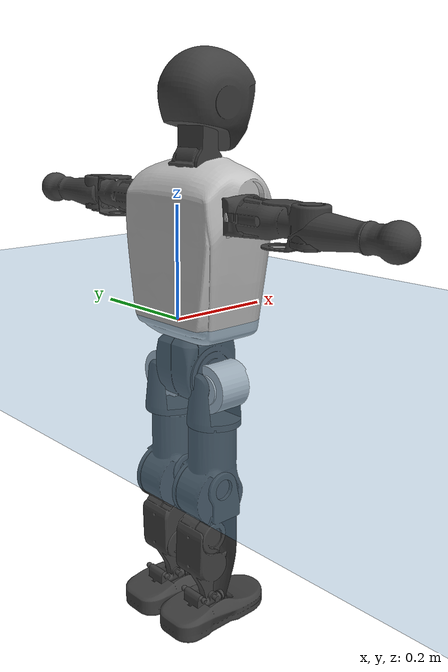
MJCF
<mujoco model="T1">
  <compiler angle="radian" assetdir="assets" balanceinertia="true" inertiafromgeom="false"/>

  <option timestep="0.005" density="1.2" viscosity="2e-05"/>

  <size nkey="1"/>

  <visual>
    <quality shadowsize="8192"/>
    <map shadowclip="0.5"/>
  </visual>

  <default>
    <default class="/">
      <joint armature="0.01" damping="0.01" frictionloss="0.1"/>
      <geom contype="0" conaffinity="0" group="1" solref="-1000 -80"/>
      <site size="0.01 0.005 0.005" group="5"/>
      <general forcelimited="true" biastype="affine" gainprm="25" biasprm="0 -25 -0.6"/>
      <default class="t1">
        <geom rgba="0.25 0.25 0.25 1"/>
        <default class="visual">
          <geom type="mesh" group="2"/>
        </default>
        <default class="collision">
          <geom group="3"/>
        </default>
        <default class="foot">
          <geom size="0.1115 0.05 0.015" type="box" condim="6" group="4" priority="1" solimp="0.015 1 0.015"/>
        </default>
        <default class="reward_collision_sphere">
          <geom group="5" rgba="1 0 0 1"/>
        </default>
      </default>
    </default>
  </default>

  <asset>
    <texture type="skybox" colorspace="auto" name="//unnamed_texture_0" builtin="gradient" rgb1="0.95 0.95 0.95" rgb2="0.95 0.95 0.95" width="100" height="600"/>
    <texture type="2d" colorspace="auto" name="texplane" builtin="checker" rgb1="0.345 0.575 0.748" rgb2="0.345 0.575 0.748" markrgb="1 1 1" width="512" height="512"/>
    <material name="MatPlane" class="/" texture="texplane" texuniform="true" texrepeat="2 2" specular="0.9"/>
    <mesh name="Trunk" class="/" file="Trunk.stl"/>
    <mesh name="H1" class="/" file="H1.stl"/>
    <mesh name="H2" class="/" file="H2.stl"/>
    <mesh name="AL1" class="/" file="AL1.stl"/>
    <mesh name="AL2" class="/" file="AL2.stl"/>
    <mesh name="AL3" class="/" file="AL3.stl"/>
    <mesh name="left_hand_link" class="/" file="left_hand_link.stl"/>
    <mesh name="AR1" class="/" file="AR1.stl"/>
    <mesh name="AR2" class="/" file="AR2.stl"/>
    <mesh name="AR3" class="/" file="AR3.stl"/>
    <mesh name="right_hand_link" class="/" file="right_hand_link.stl"/>
    <mesh name="Waist" class="/" file="Waist.stl"/>
    <mesh name="Hip_Pitch_Left" class="/" file="Hip_Pitch_Left.stl"/>
    <mesh name="Hip_Roll_Left" class="/" file="Hip_Roll_Left.stl"/>
    <mesh name="Hip_Yaw_Left" class="/" file="Hip_Yaw_Left.stl"/>
    <mesh name="Shank_Left" class="/" file="Shank_Left.stl"/>
    <mesh name="Ankle_Cross_Left" class="/" file="Ankle_Cross_Left.stl"/>
    <mesh name="left_foot_link" class="/" file="left_foot_link.stl"/>
    <mesh name="Hip_Pitch_Right" class="/" file="Hip_Pitch_Right.stl"/>
    <mesh name="Hip_Roll_Right" class="/" file="Hip_Roll_Right.stl"/>
    <mesh name="Hip_Yaw_Right" class="/" file="Hip_Yaw_Right.stl"/>
    <mesh name="Shank_Right" class="/" file="Shank_Right.stl"/>
    <mesh name="Ankle_Cross_Right" class="/" file="Ankle_Cross_Right.stl"/>
    <mesh name="right_foot_link" class="/" file="right_foot_link.stl"/>
  </asset>

  <worldbody>
    <geom name="floor" class="/" size="100 100 0.125" type="plane" group="0" material="MatPlane"/>
    <light name="toplight_shadow" class="/" pos="0 0 5" dir="0.0990148 0.0990148 -0.990148" type="directional" ambient="0.04 0.04 0.04" diffuse="0.55 0.55 0.55" specular="0.12 0.12 0.12"/>
    <light name="toplight_fill" class="/" pos="0 0 5" dir="0.0990148 0.0990148 -0.990148" type="directional" castshadow="false" ambient="0.04 0.04 0.04" diffuse="0.3 0.3 0.3" specular="0.08 0.08 0.08"/>
    <body name="trunk" childclass="t1" pos="-0.00170927 0.000786916 -0.000948038" quat="0.999995 0.000251858 0.00283856 -0.00104568">
      <inertial pos="0.0419785 0.00393503 0.0905853" quat="0.999998 -3.90581e-05 0.00058632 -0.00187649" mass="4.61012" diaginertia="0.015368 0.00596306 0.0288226"/>
      <joint name="//unnamed_joint_0" type="free" armature="0" damping="0" frictionloss="0"/>
      <geom name="//unnamed_geom_1" class="visual" rgba="0.76 0.76 0.76 1" mesh="Trunk"/>
      <geom name="//unnamed_geom_2" class="collision" size="0.0538383 0.0717844 0.107677" pos="0.0420118 0 0.102914" type="box"/>
      <geom name="//unnamed_geom_3" class="reward_collision_sphere" size="0.0825521" pos="0.0420118 0 0.0857618"/>
      <geom name="//unnamed_geom_4" class="reward_collision_sphere" size="0.0107677" pos="0.0420118 0.0506361 0"/>
      <geom name="//unnamed_geom_5" class="reward_collision_sphere" size="0.0107677" pos="0.0420118 -0.0506361 0"/>
      <geom name="//unnamed_geom_6" class="reward_collision_sphere" size="0.0107677" pos="0.0420118 0.0637419 0.154371"/>
      <geom name="//unnamed_geom_7" class="reward_collision_sphere" size="0.0107677" pos="0.0420118 -0.0637419 0.154371"/>
      <site name="imu" pos="-0.0138398 0.00920675 0.0139759" size="0.00717844"/>
      <camera name="track" pos="0 -1.19144 0" quat="0.707107 0.707107 0 0" mode="trackcom"/>
      <camera name="ego_camera" pos="0.0854239 0 0.360199" quat="-0.5 -0.5 0.5 0.5"/>
      <body name="H1" pos="0.0424148 -0.00073448 0.210311" quat="1 2.22005e-05 2.76107e-05 3.64437e-05">
        <inertial pos="0.000512489 -0.00781465 0.0488468" quat="0.748143 -0.0294675 0.00735596 0.662842" mass="0.173428" diaginertia="4.31614e-05 1.85842e-05 7.88248e-05"/>
        <joint name="AAHead_yaw" pos="0 0 0" axis="0.0289769 0.00663904 0.999558" range="-1.59578 1.53067" armature="0.00789065" damping="0.0114364" frictionloss="0.0733748"/>
        <geom name="//unnamed_geom_8" class="visual" mesh="H1"/>
        <body name="H2" pos="-0.00338008 -0.0062576 0.0561026" quat="0.999999 0.000631203 0.0010018 -1.45219e-05">
          <inertial pos="0.000178938 -0.0048605 0.0851381" quat="0.987154 0.110212 -0.0846215 -0.0788606" mass="0.225884" diaginertia="0.000313163 0.000142853 0.000771887"/>
          <joint name="Head_pitch" pos="0 0 0" axis="-0.000463788 -1 0.000532595" range="-1.24269 0.354015" armature="0.00946148" damping="0.00442578" frictionloss="0.0429753"/>
          <geom name="//unnamed_geom_9" class="visual" mesh="H2"/>
          <geom name="//unnamed_geom_10" class="collision" size="0.0574275" pos="0.00700196 0 0.094338"/>
          <geom name="//unnamed_geom_11" class="reward_collision_sphere" size="0.064606" pos="0.0140039 0 0.0857618"/>
        </body>
      </body>
      <body name="AL1" pos="0.0415058 0.0687909 0.19443" quat="1 -0.000465937 0.000355303 -0.000182719">
        <inertial pos="0.00573111 0.0290136 -0.00273781" quat="0.50685 0.501422 -0.495201 0.496442" mass="0.18917" diaginertia="0.000224917 9.51507e-05 0.000137794"/>
        <joint name="Left_Shoulder_Pitch" pos="0 0 0" axis="-0.0133744 0.99948 -0.0293311" stiffness="0.00710051" range="-3.28723 1.23843" armature="0.00645204" damping="0.00742415" frictionloss="0.0724283"/>
        <geom name="//unnamed_geom_12" class="visual" rgba="0.76 0.76 0.76 1" mesh="AL1"/>
        <body name="AL2" pos="0.00441862 0.0330414 0.0027844" quat="1 -0.000183977 0.000176339 0.000127379">
          <inertial pos="0.00177996 0.0236003 0.00461208" quat="0.485964 0.505299 -0.503715 0.504761" mass="0.0624366" diaginertia="6.75779e-05 2.58784e-05 8.32913e-05"/>
          <joint name="Left_Shoulder_Roll" pos="0 0 0" axis="-0.999998 0.00198303 -0.000989114" range="-1.59811 1.78681" armature="0.00695379" damping="0.00431801" frictionloss="0.0712523"/>
          <geom name="//unnamed_geom_13" class="visual" mesh="AL2"/>
          <body name="AL3" pos="-0.000774357 0.037412 0.000140661" quat="1 -2.85715e-05 -0.000448312 0.000746779">
            <inertial pos="0.00140689 0.0501767 0.00142041" quat="0.704379 0.709058 0.00192444 -0.0329114" mass="0.369187" diaginertia="0.00209145 0.00092615 0.000308313"/>
            <joint name="Left_Elbow_Pitch" pos="0 0 0" axis="-0.00578117 -0.999971 -0.0048648" stiffness="0.00153397" range="-2.29393 2.22196" armature="0.00719812" damping="0" frictionloss="0.0468797"/>
            <geom name="//unnamed_geom_14" class="visual" mesh="AL3"/>
            <geom name="//unnamed_geom_15" class="collision" size="0.0215353 0.0538383" pos="0 0.029786 0" quat="0.707105 0.707108 0 0" type="cylinder"/>
            <geom name="//unnamed_geom_16" class="reward_collision_sphere" size="0.0258424"/>
            <body name="left_hand_link" pos="-0.00506453 0.0854331 -0.00220705" quat="0.999999 0.000192029 -0.000270146 -0.000977214">
              <inertial pos="-0.00528361 0.0680612 0.00525909" quat="0.708896 0.705297 -0.0025583 -0.00408757" mass="0.121304" diaginertia="0.00138986 0.000580934 9.5347e-05"/>
              <joint name="Left_Elbow_Yaw" pos="0 0 0" axis="-0.00344974 0.00857232 0.999957" range="-2.42834 -0.0364567" armature="0.0063387" damping="0.00565273" frictionloss="0.0710956"/>
              <geom name="//unnamed_geom_17" class="visual" mesh="left_hand_link"/>
              <geom name="//unnamed_geom_18" class="collision" size="0.0215353 0.0628114" pos="0 0.0774435 0" quat="0.707105 0.707108 0 0" type="cylinder"/>
              <geom name="//unnamed_geom_19" class="reward_collision_sphere" size="0.0358922"/>
              <geom name="//unnamed_geom_20" class="reward_collision_sphere" size="0.0251245" pos="0 0.0655291 0"/>
              <geom name="//unnamed_geom_21" class="reward_collision_sphere" size="0.0251245" pos="0 0.12808 0"/>
            </body>
          </body>
        </body>
      </body>
      <body name="AR1" pos="0.0353314 -0.0590293 0.186665" quat="0.999993 0.00137477 -0.00310322 0.00126165">
        <inertial pos="-0.000410718 -0.0271508 -2.08463e-05" quat="0.505708 0.49411 -0.506875 0.493145" mass="0.178647" diaginertia="0.00022068 8.69245e-05 0.00012687"/>
        <joint name="Right_Shoulder_Pitch" pos="0 0 0" axis="-0.0102787 -0.999946 -0.00161883" range="-1.26469 3.30227" armature="0.00687703" damping="0" frictionloss="0.0723975"/>
        <geom name="//unnamed_geom_22" class="visual" rgba="0.76 0.76 0.76 1" mesh="AR1"/>
        <body name="AR2" pos="-0.00189636 -0.0239035 0.0063561" quat="0.999998 -0.00199085 -0.000224303 0.000651727">
          <inertial pos="0.00219553 -0.0222608 -6.01268e-05" quat="0.503965 0.496363 -0.517156 0.481864" mass="0.0616472" diaginertia="6.96589e-05 2.64578e-05 8.47969e-05"/>
          <joint name="Right_Shoulder_Roll" pos="0 0 0" axis="-0.99972 -0.0234323 -0.00314913" stiffness="0.00889978" range="-1.72995 1.58354" armature="0.00715755" damping="0.0252198" frictionloss="0.0636681"/>
          <geom name="//unnamed_geom_23" class="visual" mesh="AR2"/>
          <body name="AR3" pos="0.00139081 -0.0353222 -0.00144218" quat="0.999997 0.00183743 -0.00159423 -0.000762954">
            <inertial pos="-0.0080528 -0.0488793 0.00052518" quat="0.705449 0.708692 0.00480549 -0.00867111" mass="0.370074" diaginertia="0.00199662 0.000867219 0.000265299"/>
            <joint name="Right_Elbow_Pitch" pos="0 0 0" axis="0.00267005 0.99998 -0.00570902" range="-2.27825 2.43742" armature="0.00723969" damping="0.00230593" frictionloss="0.069342"/>
            <geom name="//unnamed_geom_24" class="visual" mesh="AR3"/>
            <geom name="//unnamed_geom_25" class="collision" size="0.0215353 0.0538383" pos="0 -0.029786 0" quat="0.707105 0.707108 0 0" type="cylinder"/>
            <geom name="//unnamed_geom_26" class="reward_collision_sphere" size="0.0258424"/>
            <body name="right_hand_link" pos="0.000159996 -0.0852371 -0.00550327" quat="0.999998 -0.00117413 0.000201143 0.00181485">
              <inertial pos="-0.00706131 -0.0643308 0.00601637" quat="0.706361 0.707852 0.000215219 6.04124e-05" mass="0.134707" diaginertia="0.00165798 0.000686693 0.000100818"/>
              <joint name="Right_Elbow_Yaw" pos="0 0 0" axis="0.0114039 0.000580933 0.999935" range="0.0180029 2.54262" armature="0.0069895" damping="0.0133851" frictionloss="0.0694499"/>
              <geom name="//unnamed_geom_27" class="visual" mesh="right_hand_link"/>
              <geom name="//unnamed_geom_28" class="collision" size="0.0215353 0.0628114" pos="0 -0.0774435 0" quat="0.707105 0.707108 0 0" type="cylinder"/>
              <geom name="//unnamed_geom_29" class="reward_collision_sphere" size="0.0358922"/>
              <geom name="//unnamed_geom_30" class="reward_collision_sphere" size="0.0251245" pos="0 -0.0655291 0"/>
              <geom name="//unnamed_geom_31" class="reward_collision_sphere" size="0.0251245" pos="0 -0.12808 0"/>
            </body>
          </body>
        </body>
      </body>
      <body name="Waist" pos="0.0495478 0.00514862 -0.0998087" quat="1 0.000136043 0.000548385 0.000552664">
        <inertial pos="0.00453512 -0.00399267 0.00424805" quat="0.982496 0.0103572 -0.185489 0.013715" mass="1.03193" diaginertia="0.000910402 0.000413751 0.00235463"/>
        <joint name="Waist" pos="0 0 0" axis="-0.0010561 0.003443 0.999994" range="-1.5638 1.56678" armature="0.00798306" damping="0.0380032" frictionloss="0.0661319"/>
        <geom name="//unnamed_geom_32" class="visual" mesh="Waist"/>
        <body name="Hip_Pitch_Left" pos="-0.00128517 0.0614558 0.000808834" quat="1 -0.000351242 -0.000135635 -0.000131068">
          <inertial pos="0.000901851 -0.00286419 -0.0100732" quat="0.974993 0.221505 0.0180195 0.000113589" mass="0.39033" diaginertia="0.000305077 0.000110593 0.000585714"/>
          <joint name="Left_Hip_Pitch" pos="0 0 0" axis="-0.000829531 1 -0.000356692" range="-1.75924 1.47087" armature="0.00666692" damping="0.0217007" frictionloss="0.0755992"/>
          <geom name="//unnamed_geom_33" class="visual" rgba="0.76 0.76 0.76 1" mesh="Hip_Pitch_Left"/>
          <body name="Hip_Roll_Left" pos="-0.00578015 -0.00434449 -0.0149148" quat="0.999999 -0.000629933 0.00020169 -0.00101524">
            <inertial pos="-0.000812799 -0.000647459 -0.0415798" quat="0.700342 -0.00154234 -0.0103072 0.713731" mass="0.133995" diaginertia="0.000260501 0.000113316 0.000240877"/>
            <joint name="Left_Hip_Roll" pos="0 0 0" axis="-1 -5.51143e-06 -2.55234e-05" stiffness="0.0263524" range="-1.56993 0.0793288" armature="0.00813458" damping="0.0128637" frictionloss="0.0799647"/>
            <geom name="//unnamed_geom_34" class="visual" mesh="Hip_Roll_Left"/>
            <geom name="//unnamed_geom_35" class="reward_collision_sphere" size="0.0394814"/>
            <body name="Hip_Yaw_Left" pos="0.000706642 -0.00689087 -0.0788587" quat="1 0.000244631 -0.000207184 -0.000201247">
              <inertial pos="-0.00377748 -0.00132103 -0.075843" quat="0.700931 -0.0205418 -0.0508569 0.711117" mass="0.832537" diaginertia="0.00434161 0.00204009 0.00118046"/>
              <joint name="Left_Hip_Yaw" pos="0 0 0" axis="0.0015318 -0.00197054 -0.999997" range="-1.06521 0.844018" armature="0.00653695" damping="0.0487592" frictionloss="0.0709754"/>
              <geom name="//unnamed_geom_36" class="visual" mesh="Hip_Yaw_Left"/>
              <geom name="//unnamed_geom_37" class="collision" size="0.0358922 0.0574275" type="cylinder"/>
              <body name="Shank_Left" pos="-0.00735976 -0.00333452 -0.109385" quat="1 0.000346069 -4.94937e-05 3.60706e-05">
                <inertial pos="-0.00275106 0.000434274 -0.102097" quat="0.998163 -0.00207323 -0.0224229 0.0562417" mass="0.613037" diaginertia="0.00564908 0.00264429 0.000909491"/>
                <joint name="Left_Knee_Pitch" pos="0 0 0" axis="0.00238513 0.999952 -0.00948359" range="-0.0290079 2.32058" armature="0.00737623" damping="0" frictionloss="0.0672513"/>
                <geom name="//unnamed_geom_38" class="visual" mesh="Shank_Left"/>
                <geom name="//unnamed_geom_39" class="collision" size="0.0358922 0.0538383" pos="0 0 -0.102914" type="cylinder"/>
                <geom name="//unnamed_geom_40" class="reward_collision_sphere" size="0.0466599"/>
                <body name="Ankle_Cross_Left" pos="-0.00180607 -0.00292779 -0.236239" quat="1 -5.2354e-05 -0.000559734 0.000782463">
                  <inertial pos="0.00347636 -0.00604331 -0.0072634" quat="0.443952 0.550689 0.550673 0.443179" mass="0.028055" diaginertia="4.80397e-06 2.07871e-06 5.32431e-06"/>
                  <joint name="Left_Ankle_Pitch" pos="0 0 0" axis="0.0179312 0.999776 -0.0112814" range="-0.82702 0.386181" armature="0.00917143" damping="0.0104464" frictionloss="0.0663769"/>
                  <geom name="//unnamed_geom_41" class="visual" mesh="Ankle_Cross_Left"/>
                  <body name="left_foot_link" pos="-0.00117274 -0.00207461 -0.0157675" quat="0.999994 -0.00248145 0.00129592 0.00218642">
                    <inertial pos="0.00578015 0.00104639 -0.00821186" quat="-0.00368726 0.617807 0.0027655 0.786316" mass="0.253158" diaginertia="0.000434504 0.000178476 0.000938293"/>
                    <joint name="Left_Ankle_Roll" pos="0 0 0" axis="-0.999994 -0.00273496 -0.00192898" stiffness="0.0223122" range="-0.331109 0.563913" armature="0.00667833" damping="0" frictionloss="0.0929147"/>
                    <geom name="//unnamed_geom_42" class="visual" mesh="left_foot_link"/>
                    <geom name="left_foot" class="foot" size="0.0915889 0.0384928 0.00968777" pos="0.00700196 0 -0.0128643"/>
                    <geom name="//unnamed_geom_44" class="reward_collision_sphere" size="0.0373279" pos="0.00700196 0 -0.0128643"/>
                    <geom name="//unnamed_geom_45" class="reward_collision_sphere" size="0.0215353" pos="0.0665186 -0.0137015 -0.0128643"/>
                    <geom name="//unnamed_geom_46" class="reward_collision_sphere" size="0.0215353" pos="-0.0490137 -0.0137015 -0.0128643"/>
                    <site name="left_foot" class="foot" pos="0.00700196 0 -0.0128643" size="0.00717844"/>
                  </body>
                </body>
              </body>
            </body>
          </body>
        </body>
        <body name="Hip_Pitch_Right" pos="0.00500757 -0.0601134 -0.000825626" quat="0.999997 -0.00257213 -0.000338291 -0.000301381">
          <inertial pos="0.000164188 0.00792557 -0.0173017" quat="0.97588 -0.217704 0.0161283 -0.00196625" mass="0.379675" diaginertia="0.000289785 0.000106568 0.000538797"/>
          <joint name="Right_Hip_Pitch" pos="0 0 0" axis="0.00379813 -0.999987 0.00328988" range="-1.58014 1.83282" armature="0.00612365" damping="0.0137091" frictionloss="0.0716542"/>
          <geom name="//unnamed_geom_47" class="visual" rgba="0.76 0.76 0.76 1" mesh="Hip_Pitch_Right"/>
          <body name="Hip_Roll_Right" pos="-0.00643843 0.00481565 -0.0134463" quat="1 -6.84286e-05 7.59174e-05 0.000366425">
            <inertial pos="0.00140829 0.000270235 -0.0490039" quat="0.711979 -0.000341828 -0.00692097 0.702166" mass="0.129063" diaginertia="0.000286042 0.00010659 0.000232468"/>
            <joint name="Right_Hip_Roll" pos="0 0 0" axis="-0.999999 0.00116051 -0.00123135" range="-0.202301 1.71499" armature="0.00812716" damping="0.0365528" frictionloss="0.0955477"/>
            <geom name="//unnamed_geom_48" class="visual" mesh="Hip_Roll_Right"/>
            <geom name="//unnamed_geom_49" class="reward_collision_sphere" size="0.0394814"/>
            <body name="Hip_Yaw_Right" pos="-0.00588477 0.000344961 -0.0727695" quat="0.999999 -0.000920783 -0.00112646 0.000522385">
              <inertial pos="-0.00713555 0.00234543 -0.079015" quat="0.710536 -0.0597653 -0.00646117 0.701088" mass="0.805085" diaginertia="0.00472351 0.00186375 0.00130834"/>
              <joint name="Right_Hip_Yaw" pos="0 0 0" axis="-0.0112179 0.0374659 -0.999235" range="-1.02475 0.979625" armature="0.00868007" damping="0" frictionloss="0.0795015"/>
              <geom name="//unnamed_geom_50" class="visual" mesh="Hip_Yaw_Right"/>
              <geom name="//unnamed_geom_51" class="collision" size="0.0358922 0.0574275" type="cylinder"/>
              <body name="Shank_Right" pos="-0.0158832 -0.00617775 -0.114449" quat="1 -0.000826008 -0.000434084 -0.000226611">
                <inertial pos="-0.00540763 0.00294721 -0.103857" quat="0.999153 0.016082 -0.0372022 -0.00708145" mass="0.66105" diaginertia="0.00560617 0.00260734 0.0008867"/>
                <joint name="Right_Knee_Pitch" pos="0 0 0" axis="0.025645 -0.99962 -0.0101112" stiffness="0.032862" range="-2.33533 -0.0521013" armature="0.00698204" damping="0" frictionloss="0.0649048"/>
                <geom name="//unnamed_geom_52" class="visual" mesh="Shank_Right"/>
                <geom name="//unnamed_geom_53" class="collision" size="0.0358922 0.0538383" pos="0 0 -0.102914" type="cylinder"/>
                <geom name="//unnamed_geom_54" class="reward_collision_sphere" size="0.0466599"/>
                <body name="Ankle_Cross_Right" pos="0.00196788 -0.00524922 -0.234821" quat="0.999997 0.00141251 -0.00110302 0.00169626">
                  <inertial pos="-0.00508762 -0.00386198 -0.00835195" quat="0.443979 0.55192 0.549999 0.442457" mass="0.0270476" diaginertia="5.42373e-06 1.95625e-06 5.53449e-06"/>
                  <joint name="Right_Ankle_Pitch" pos="0 0 0" axis="0.0135437 -0.9999 0.00402971" range="-0.187645 0.843302" armature="0.00819026" damping="0.00415583" frictionloss="0.0637509"/>
                  <geom name="//unnamed_geom_55" class="visual" mesh="Ankle_Cross_Right"/>
                  <body name="right_foot_link" pos="-0.00325263 -0.00385828 -0.011043" quat="1 0.000110161 -0.000407313 -0.000522926">
                    <inertial pos="0.000258951 -0.00391165 -0.00843559" quat="-0.000380604 0.619158 -0.00277478 0.785262" mass="0.214938" diaginertia="0.000420352 0.000167666 0.000969808"/>
                    <joint name="Right_Ankle_Roll" pos="0 0 0" axis="-0.999971 -0.00757607 0.000888853" range="-0.482218 0.467983" armature="0.0077757" damping="0.00511026" frictionloss="0.0969418"/>
                    <geom name="//unnamed_geom_56" class="visual" mesh="right_foot_link"/>
                    <geom name="right_foot" class="foot" size="0.0945236 0.0389228 0.0101889" pos="0.00700196 0 -0.0128643"/>
                    <geom name="//unnamed_geom_58" class="reward_collision_sphere" size="0.0287138"/>
                    <geom name="//unnamed_geom_59" class="reward_collision_sphere" size="0.0215353" pos="0.00700196 0 -0.0128643"/>
                    <geom name="//unnamed_geom_60" class="reward_collision_sphere" size="0.0215353" pos="0.0665186 0.0137015 -0.0128643"/>
                    <geom name="//unnamed_geom_61" class="reward_collision_sphere" size="0.0215353" pos="-0.0490137 0.0137015 -0.0128643"/>
                    <site name="right_foot" class="foot" pos="0.00700196 0 -0.0128643" size="0.00717844"/>
                  </body>
                </body>
              </body>
            </body>
          </body>
        </body>
      </body>
    </body>
  </worldbody>

  <contact>
    <pair class="/" geom1="floor" geom2="left_foot" name="//unnamed_contact_0"/>
    <pair class="/" geom1="floor" geom2="right_foot" name="//unnamed_contact_1"/>
  </contact>

  <actuator>
    <general name="AAHead_yaw" class="/" joint="AAHead_yaw" forcerange="-4.82264 4.82264" gainprm="21.2026" biasprm="0 -21.2026 -0.416299"/>
    <general name="Head_pitch" class="/" joint="Head_pitch" forcerange="-5.23937 5.23937" gainprm="21.2026" biasprm="0 -21.2026 -0.416299"/>
    <general name="Left_Shoulder_Pitch" class="/" joint="Left_Shoulder_Pitch" forcerange="-16.8738 16.8738" gainprm="21.2026" biasprm="0 -21.2026 -0.416299"/>
    <general name="Left_Shoulder_Roll" class="/" joint="Left_Shoulder_Roll" forcerange="-12.8262 12.8262" gainprm="21.2026" biasprm="0 -21.2026 -0.416299"/>
    <general name="Left_Elbow_Pitch" class="/" joint="Left_Elbow_Pitch" forcerange="-13.2925 13.2925" gainprm="21.2026" biasprm="0 -21.2026 -0.416299"/>
    <general name="Left_Elbow_Yaw" class="/" joint="Left_Elbow_Yaw" forcerange="-12.6432 12.6432" gainprm="21.2026" biasprm="0 -21.2026 -0.416299"/>
    <general name="Right_Shoulder_Pitch" class="/" joint="Right_Shoulder_Pitch" forcerange="-12.0406 12.0406" gainprm="21.2026" biasprm="0 -21.2026 -0.416299"/>
    <general name="Right_Shoulder_Roll" class="/" joint="Right_Shoulder_Roll" forcerange="-13.5625 13.5625" gainprm="21.2026" biasprm="0 -21.2026 -0.416299"/>
    <general name="Right_Elbow_Pitch" class="/" joint="Right_Elbow_Pitch" forcerange="-13.5827 13.5827" gainprm="21.2026" biasprm="0 -21.2026 -0.416299"/>
    <general name="Right_Elbow_Yaw" class="/" joint="Right_Elbow_Yaw" forcerange="-13.5224 13.5224" gainprm="21.2026" biasprm="0 -21.2026 -0.416299"/>
    <general name="Waist" class="/" joint="Waist" forcerange="-22.5538 22.5538" gainprm="21.2026" biasprm="0 -21.2026 -0.416299"/>
    <general name="Left_Hip_Pitch" class="/" joint="Left_Hip_Pitch" forcerange="-29.7276 29.7276" gainprm="21.2026" biasprm="0 -21.2026 -0.416299"/>
    <general name="Left_Hip_Roll" class="/" joint="Left_Hip_Roll" forcerange="-22.26 22.26" gainprm="21.2026" biasprm="0 -21.2026 -0.416299"/>
    <general name="Left_Hip_Yaw" class="/" joint="Left_Hip_Yaw" forcerange="-22.3594 22.3594" gainprm="21.2026" biasprm="0 -21.2026 -0.416299"/>
    <general name="Left_Knee_Pitch" class="/" joint="Left_Knee_Pitch" forcerange="-43.0238 43.0238" gainprm="21.2026" biasprm="0 -21.2026 -0.416299"/>
    <general name="Left_Ankle_Pitch" class="/" joint="Left_Ankle_Pitch" forcerange="-10.7879 10.7879" gainprm="21.2026" biasprm="0 -21.2026 -0.416299"/>
    <general name="Left_Ankle_Roll" class="/" joint="Left_Ankle_Roll" forcerange="-12.9476 12.9476" gainprm="21.2026" biasprm="0 -21.2026 -0.416299"/>
    <general name="Right_Hip_Pitch" class="/" joint="Right_Hip_Pitch" forcerange="-34.3204 34.3204" gainprm="21.2026" biasprm="0 -21.2026 -0.416299"/>
    <general name="Right_Hip_Roll" class="/" joint="Right_Hip_Roll" forcerange="-17.1057 17.1057" gainprm="21.2026" biasprm="0 -21.2026 -0.416299"/>
    <general name="Right_Hip_Yaw" class="/" joint="Right_Hip_Yaw" forcerange="-24.3582 24.3582" gainprm="21.2026" biasprm="0 -21.2026 -0.416299"/>
    <general name="Right_Knee_Pitch" class="/" joint="Right_Knee_Pitch" forcerange="-47.0526 47.0526" gainprm="21.2026" biasprm="0 -21.2026 -0.416299"/>
    <general name="Right_Ankle_Pitch" class="/" joint="Right_Ankle_Pitch" forcerange="-13.4593 13.4593" gainprm="21.2026" biasprm="0 -21.2026 -0.416299"/>
    <general name="Right_Ankle_Roll" class="/" joint="Right_Ankle_Roll" forcerange="-8.96047 8.96047" gainprm="21.2026" biasprm="0 -21.2026 -0.416299"/>
  </actuator>

  <sensor>
    <gyro site="imu" name="imu_angular_velocity"/>
    <velocimeter site="imu" name="imu_linear_velocity"/>
    <framelinvel objtype="site" objname="left_foot" name="left_foot_global_linear_velocity"/>
    <framelinvel objtype="site" objname="right_foot" name="right_foot_global_linear_velocity"/>
  </sensor>

  <keyframe>
    <key name="home" qpos="0 0 0.6385 1 0 0 0 0 0 0 1.4 0 -0.4 0 -1.4 0 0.4 0 -0.4 0 0 0.8 -0.4 0 0.4 0 0 -0.8 0.4 0"/>
  </keyframe>
</mujoco>
